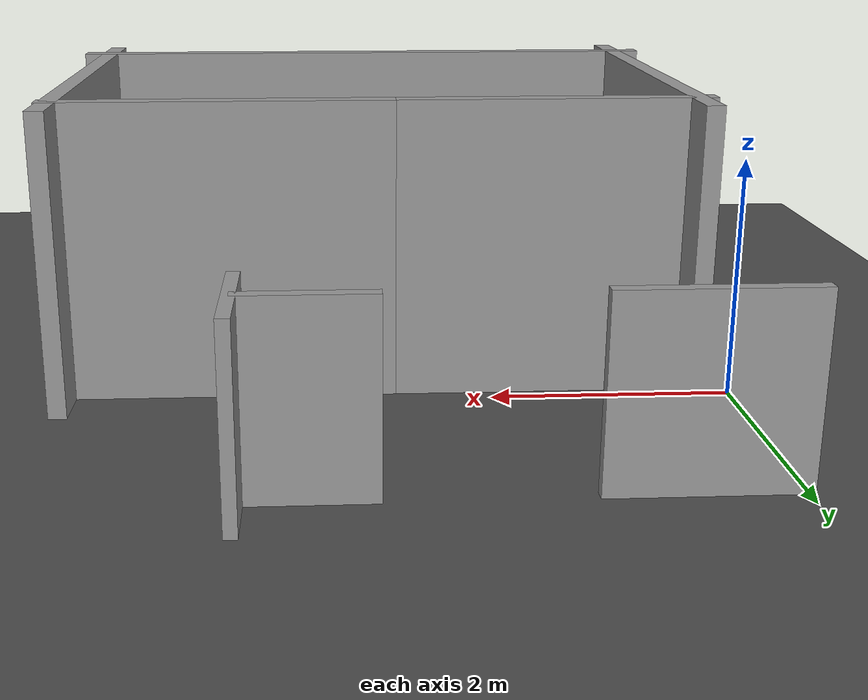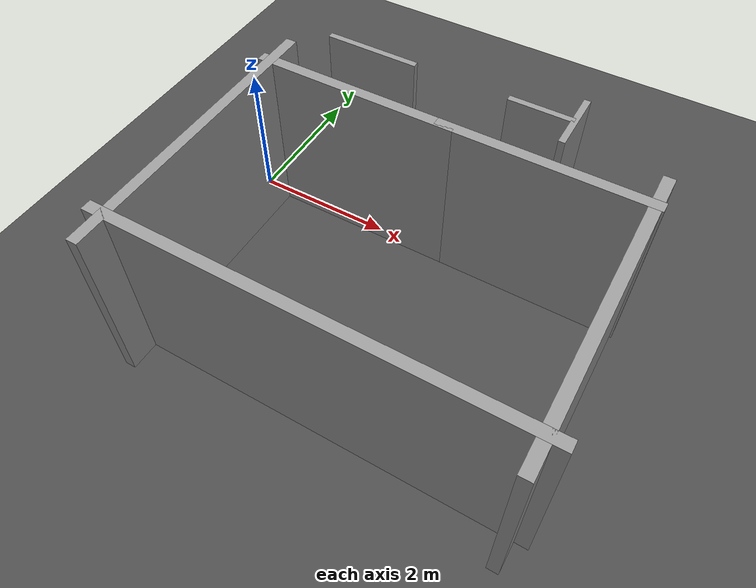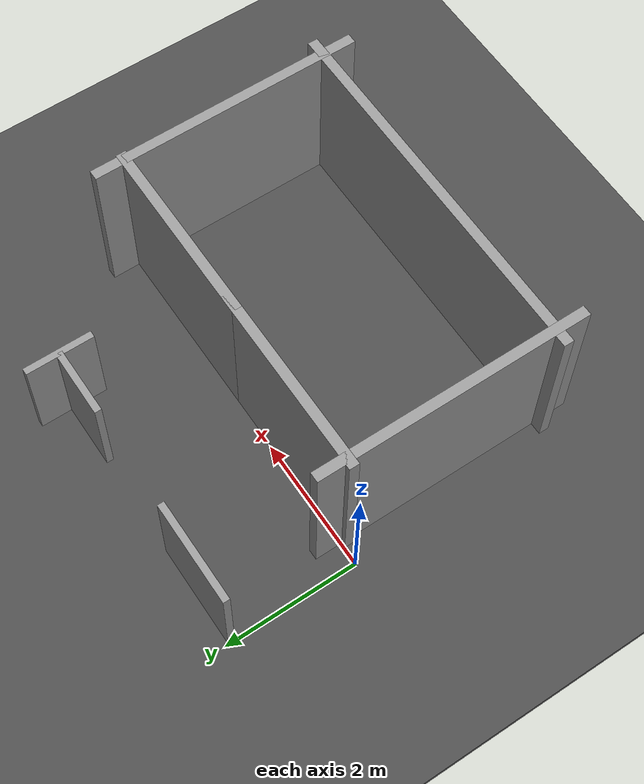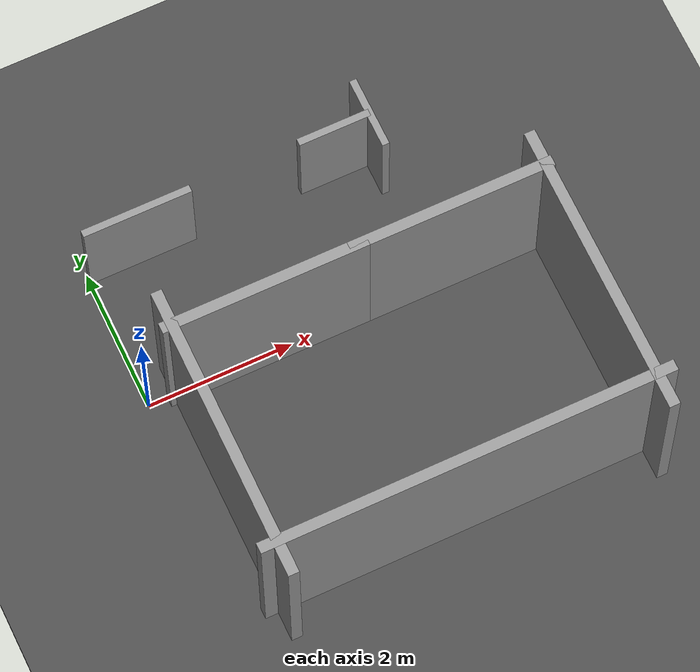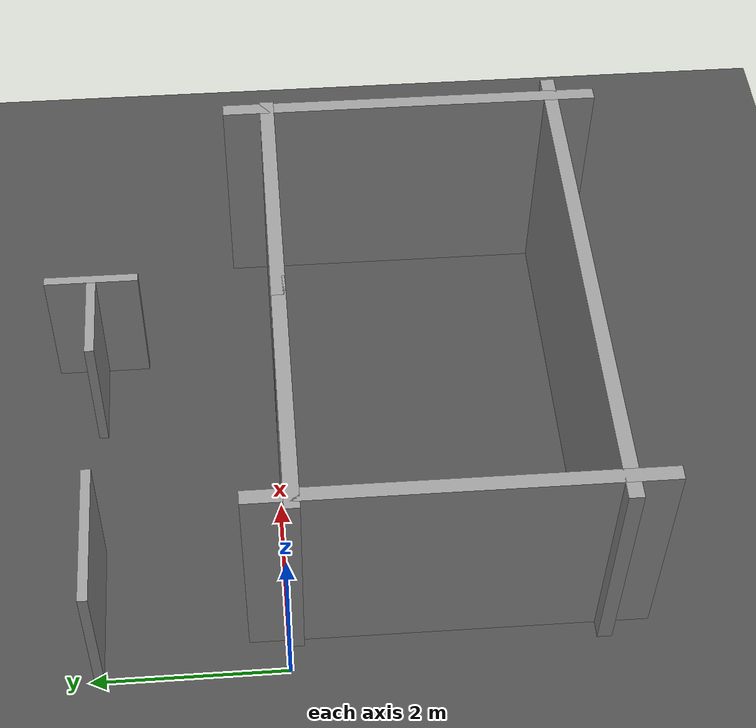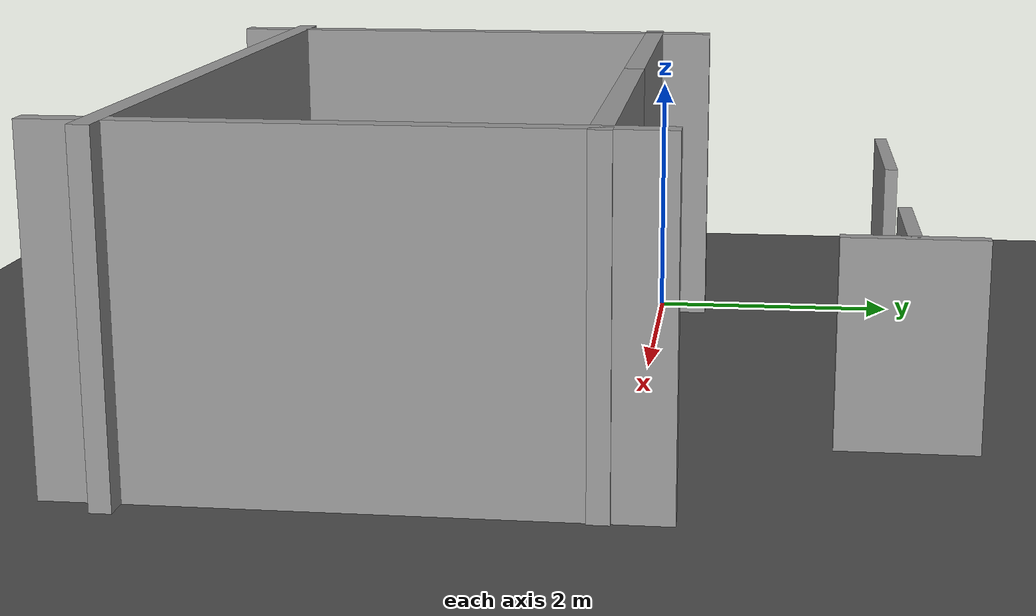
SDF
<sdf version="1.7">
 <world name="default">
  <plugin name="ros_interface_plugin" filename="librotors_gazebo_ros_interface_plugin.so"/>
  <light name="sun" type="directional">
   <pose>0 0 10 0 -0 0</pose>
   <diffuse>0.8 0.8 0.8 1</diffuse>
   <specular>0.2 0.2 0.2 1</specular>
   <attenuation>
    <range>1000</range>
    <constant>0.9</constant>
    <linear>0.01</linear>
    <quadratic>0.001</quadratic>
   </attenuation>
   <direction>-0.5 0.1 -0.9</direction>
   <spot><inner_angle>0</inner_angle><outer_angle>0</outer_angle><falloff>0</falloff></spot>
  </light>
  <gravity>0 0 -9.8</gravity>
  <magnetic_field>6e-06 2.3e-05 -4.2e-05</magnetic_field>
  <atmosphere type="adiabatic"/>
  <physics type="ode">
   <max_step_size>0.001</max_step_size>
   <real_time_factor>1</real_time_factor>
   <real_time_update_rate>1000</real_time_update_rate>
  </physics>
  <scene><ambient>0.4 0.4 0.4 1</ambient><background>0.7 0.7 0.7 1</background><shadows>1</shadows></scene>
  <spherical_coordinates>
   <surface_model>EARTH_WGS84</surface_model>
   <latitude_deg>0</latitude_deg>
   <longitude_deg>0</longitude_deg>
   <elevation>0</elevation>
   <heading_deg>0</heading_deg>
  </spherical_coordinates>
  <model name="asphalt_plane">
   <static>1</static>
   <link name="link">
    <collision name="collision"><geometry><box><size>20 20 0.1</size></box></geometry></collision>
    <visual name="visual">
     <cast_shadows>0</cast_shadows>
     <geometry><box><size>20 20 0.1</size></box></geometry>
     <material>
      <script>
       <uri>model://asphalt_plane/materials/scripts</uri>
       <uri>model://asphalt_plane/materials/textures</uri>
       <name>vrc/asphalt</name>
      </script>
     </material>
    </visual>
   </link>
  </model>
  <model name="roomba_pool">
   <pose>4.02749 1.0975 3.9e-05 -0 -0.000226 -3.14159</pose>
   <link name="Wall_3">
    <collision name="Wall_3_Collision">
     <geometry><box><size>2.8 0.15 2.5</size></box></geometry>
     <pose>0 0 1.25 0 -0 0</pose>
    </collision>
    <visual name="Wall_3_Visual">
     <pose>0 0 1.25 0 -0 0</pose>
     <geometry><box><size>2.8 0.15 2.5</size></box></geometry>
     <material>
      <script><uri>file://media/materials/scripts/gazebo.material</uri><name>Gazebo/Grey</name></script>
      <ambient>1 1 1 1</ambient>
     </material>
     <meta><layer>0</layer></meta>
    </visual>
    <pose>-0.1725 1.1725 0 0 -0 3.14159</pose>
   </link>
   <link name="Wall_4">
    <collision name="Wall_4_Collision">
     <geometry><box><size>4.05 0.15 2.5</size></box></geometry>
     <pose>0 0 1.25 0 -0 0</pose>
    </collision>
    <visual name="Wall_4_Visual">
     <pose>0 0 1.25 0 -0 0</pose>
     <geometry><box><size>4.05 0.15 2.5</size></box></geometry>
     <material>
      <script><uri>file://media/materials/scripts/gazebo.material</uri><name>Gazebo/Grey</name></script>
      <ambient>1 1 1 1</ambient>
     </material>
     <meta><layer>0</layer></meta>
    </visual>
    <pose>-1.4725 2.7225 0 0 -0 1.5708</pose>
   </link>
   <link name="Wall_5">
    <collision name="Wall_5_Collision">
     <geometry><box><size>5.6 0.15 2.5</size></box></geometry>
     <pose>0 0 1.25 0 -0 0</pose>
    </collision>
    <visual name="Wall_5_Visual">
     <pose>0 0 1.25 0 -0 0</pose>
     <geometry><box><size>5.6 0.15 2.5</size></box></geometry>
     <material>
      <script><uri>file://media/materials/scripts/gazebo.material</uri><name>Gazebo/Grey</name></script>
      <ambient>1 1 1 1</ambient>
     </material>
     <meta><layer>0</layer></meta>
    </visual>
    <pose>1.0775 4.2725 0 0 -0 0</pose>
   </link>
   <link name="Wall_6">
    <collision name="Wall_6_Collision">
     <geometry><box><size>4.05 0.15 2.5</size></box></geometry>
     <pose>0 0 1.25 0 -0 0</pose>
    </collision>
    <visual name="Wall_6_Visual">
     <pose>0 0 1.25 0 -0 0</pose>
     <geometry><box><size>4.05 0.15 2.5</size></box></geometry>
     <material>
      <script><uri>file://media/materials/scripts/gazebo.material</uri><name>Gazebo/Grey</name></script>
      <ambient>1 1 1 1</ambient>
     </material>
     <meta><layer>0</layer></meta>
    </visual>
    <pose>3.6275 2.7225 0 0 -0 -1.5708</pose>
   </link>
   <link name="Wall_7">
    <collision name="Wall_7_Collision">
     <geometry><box><size>2.8 0.15 2.5</size></box></geometry>
     <pose>0 0 1.25 0 -0 0</pose>
    </collision>
    <visual name="Wall_7_Visual">
     <pose>0 0 1.25 0 -0 0</pose>
     <geometry><box><size>2.8 0.15 2.5</size></box></geometry>
     <material>
      <script><uri>file://media/materials/scripts/gazebo.material</uri><name>Gazebo/Grey</name></script>
      <ambient>1 1 1 1</ambient>
     </material>
     <meta><layer>0</layer></meta>
    </visual>
    <pose>2.3775 1.1725 0 0 -0 3.14159</pose>
   </link>
   <static>1</static>
  </model>
  <model name="unit_box">
   <pose>0.75 1.9 0.55 -0 -0 -0</pose>
   <link name="link">
    <inertial>
     <mass>1</mass>
     <inertia>
      <ixx>0.166667</ixx>
      <ixy>0</ixy>
      <ixz>0</ixz>
      <iyy>0.166667</iyy>
      <iyz>0</iyz>
      <izz>0.166667</izz>
     </inertia>
    </inertial>
    <collision name="collision"><geometry><box><size>1.5 0.1 2</size></box></geometry></collision>
    <visual name="visual">
     <geometry><box><size>1.5 0.1 2</size></box></geometry>
     <material>
      <script><name>Gazebo/Grey</name><uri>file://media/materials/scripts/gazebo.material</uri></script>
     </material>
    </visual>
   </link>
  </model>
  <model name="unit_box_2">
   <pose>3.5 1.9 0.55 -0 -0 -0</pose>
   <link name="link">
    <inertial>
     <mass>1</mass>
     <inertia>
      <ixx>0.166667</ixx>
      <ixy>0</ixy>
      <ixz>0</ixz>
      <iyy>0.166667</iyy>
      <iyz>0</iyz>
      <izz>0.166667</izz>
     </inertia>
    </inertial>
    <collision name="collision"><geometry><box><size>1 0.1 2</size></box></geometry></collision>
    <visual name="visual">
     <geometry><box><size>1 0.1 2</size></box></geometry>
     <material>
      <script><name>Gazebo/Grey</name><uri>file://media/materials/scripts/gazebo.material</uri></script>
     </material>
    </visual>
   </link>
  </model>
  <model name="unit_box_2_clone">
   <pose>4. 1.9 0.55 -0 -0 -1.5708</pose>
   <link name="link">
    <inertial>
     <mass>1</mass>
     <inertia>
      <ixx>0.166667</ixx>
      <ixy>0</ixy>
      <ixz>0</ixz>
      <iyy>0.166667</iyy>
      <iyz>0</iyz>
      <izz>0.166667</izz>
     </inertia>
    </inertial>
    <collision name="collision"><geometry><box><size>1 0.1 2</size></box></geometry></collision>
    <visual name="visual">
     <geometry><box><size>1 0.1 2</size></box></geometry>
     <material>
      <script><name>Gazebo/Grey</name><uri>file://media/materials/scripts/gazebo.material</uri></script>
     </material>
    </visual>
   </link>
  </model>
 </world>
</sdf>
